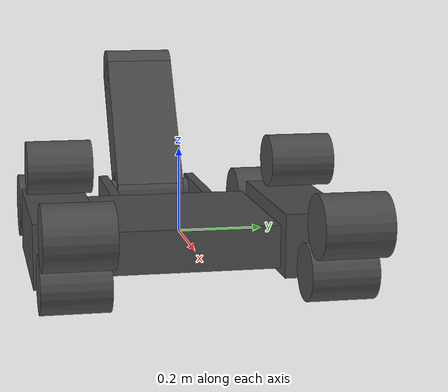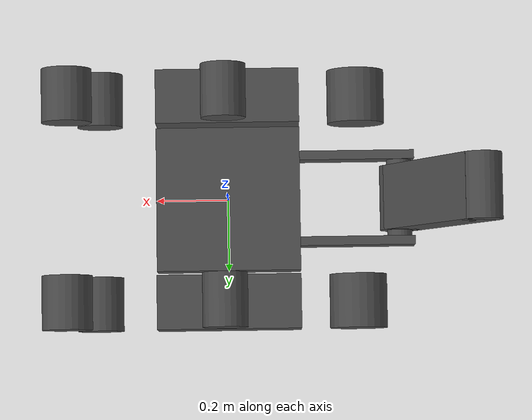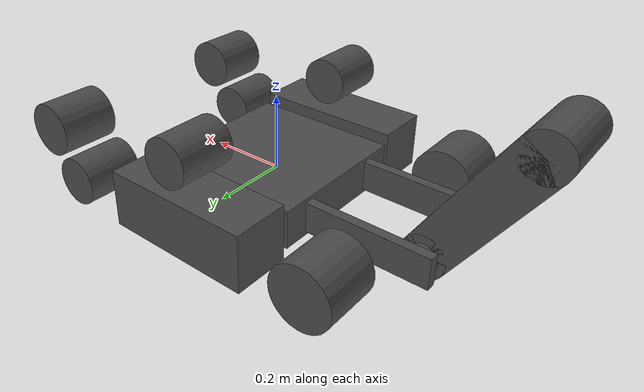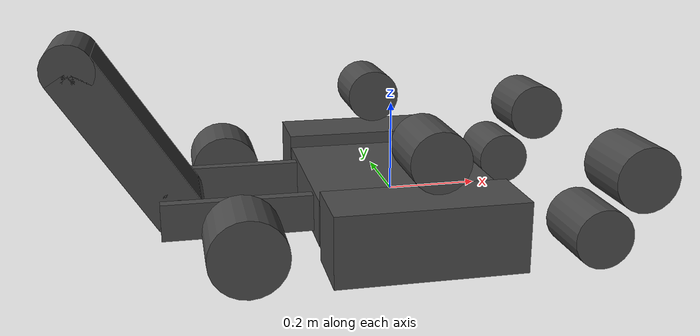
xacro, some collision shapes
<?xml version="1.0" encoding="utf-8"?>
<robot xmlns:xacro="http://ros.org/wiki/xacro"  name="tracked_vehicle">

    <xacro:property name="left_offset_y" value="0.287" />
    <xacro:property name="right_offset_y" value="-0.287" />
    <xacro:property name="swing_offset_x" value="-0.479" />

    <xacro:macro name="make_box_inertia" params="mass size_x size_y size_z">
        <inertial>
            <mass value="${mass}" />
            <inertia ixx="${mass * (size_y * size_y + size_z * size_z) / 12}" ixy="0" ixz="0"
                     iyy="${mass * (size_z * size_z + size_x * size_x) / 12}" iyz="0"
                     izz="${mass * (size_x * size_x + size_y * size_y) / 12}" />
        </inertial>
    </xacro:macro>

    <xacro:include filename="$(find mm_description)/urdf/tracked_base/single_track.urdf.xacro" />
    <xacro:include filename="$(find mm_description)/urdf/tracked_base/swing_arm.urdf.xacro" />

    <xacro:single_track prefix="left" offset_y="${left_offset_y}"/>
    <xacro:single_track prefix="right" offset_y="${right_offset_y}"/>
    <xacro:swing_arm mass="0.3" offset_x="${swing_offset_x}"/>

    <gazebo reference="vehicle_base_link">
        <material>Gazebo/DarkGrey</material>
    </gazebo>
    <gazebo reference="pusher_visual_left">
        <material>Gazebo/DarkGrey</material>
    </gazebo>
    <gazebo reference="pusher_visual_right">
        <material>Gazebo/DarkGrey</material>
    </gazebo>

    <link name="vehicle_base_link">
        <xacro:make_box_inertia mass="50" size_x="0.5" size_y="0.51" size_z="1" />
        <visual>
            <geometry>
                <mesh filename="package://mm_description/meshes/vehicle/base_meter.STL" />
            </geometry>
        </visual>

        <collision>
            <geometry>
                <box size="0.4 0.4 0.1" />
            </geometry>
        </collision>
    </link>

    <joint name="left_track_joint" type="fixed">
        <origin xyz="0 ${left_offset_y} 0" rpy="0 0 0" />
        <parent link="vehicle_base_link" />
        <child link="left_body" />
    </joint>

    <joint name="right_track_joint" type="fixed">
        <origin xyz="0 ${right_offset_y} 0" rpy="0 0 0" />
        <parent link="vehicle_base_link" />
        <child link="right_body" />
    </joint>

    <link name="pusher_visual_left">
        <xacro:make_box_inertia mass="1" size_x="0.5" size_y="0.51" size_z="1" />
        <visual>
            <geometry>
                <box size="0.5 0.025  0.08" />
            </geometry>
        </visual>

        <collision>
            <geometry>
                <box size="0.5 0.025  0.08" />
            </geometry>
        </collision>
    </link>
    <link name="pusher_visual_right">
        <xacro:make_box_inertia mass="1" size_x="0.5" size_y="0.51" size_z="1" />
        <visual>
            <geometry>
                <box size="0.5 0.025  0.08" />
            </geometry>
        </visual>

        <collision>
            <geometry>
                <box size="0.5 0.025 0.08" />
            </geometry>
        </collision>
    </link>

    <joint name="pusher_visual_left_joint" type="fixed">
        <origin xyz="-0.27 0.12 0" rpy="0 0 0" />
        <parent link="vehicle_base_link" />
        <child link="pusher_visual_left" />
    </joint>
    <joint name="pusher_visual_right_joint" type="fixed">
        <origin xyz="-0.27 -0.12 0" rpy="0 0 0" />
        <parent link="vehicle_base_link" />
        <child link="pusher_visual_right" />
    </joint>

    <!-- virtual wheel base -->
    <xacro:include filename="$(find mm_description)/urdf/tracked_base/wheel_and_caster.xacro" />

    <xacro:property name="visual" value="false" />
    <xacro:property name="wheel_base_vertical_offset" value="${wheel_radius-0.08-0.01}" />
    <xacro:property name="dist_caster_front_back" value="0.9" /> <!-- distance between front caster and back caster-->
    <xacro:property name="dist_caster_left_right" value="${left_offset_y*2}" /> <!-- distance between front caster and back caster-->
    <xacro:wheel wheel_prefix="left" parent_link="vehicle_base_link" visual="${visual}">
        <origin xyz="0 ${left_offset_y} ${wheel_base_vertical_offset}" rpy="0 0 0" />
    </xacro:wheel>
    <xacro:wheel wheel_prefix="right" parent_link="vehicle_base_link" visual="${visual}">
        <origin xyz="0 ${right_offset_y} ${wheel_base_vertical_offset}" rpy="0 0 0" />
    </xacro:wheel>
    <xacro:caster caster_prefix="front_left" parent_link="vehicle_base_link" visual="${visual}" >
        <origin xyz="${dist_caster_front_back/2} ${dist_caster_left_right/2} ${wheel_base_vertical_offset - wheel_radius + caster_radius}" rpy="0 0 0" />
    </xacro:caster>
    <xacro:caster caster_prefix="front_right" parent_link="vehicle_base_link" visual="${visual}" >
        <origin xyz="${dist_caster_front_back/2} ${-dist_caster_left_right/2} ${wheel_base_vertical_offset - wheel_radius + caster_radius}" rpy="0 0 0" />
    </xacro:caster>
    <xacro:caster caster_prefix="back_left" parent_link="vehicle_base_link" visual="${visual}">
        <origin xyz="${-dist_caster_front_back/2} ${dist_caster_left_right/2} ${wheel_base_vertical_offset - wheel_radius + caster_radius}" rpy="0 0 0" />
    </xacro:caster>
    <xacro:caster caster_prefix="back_right" parent_link="vehicle_base_link" visual="${visual}">
        <origin xyz="${-dist_caster_front_back/2} ${-dist_caster_left_right/2} ${wheel_base_vertical_offset - wheel_radius + caster_radius}" rpy="0 0 0" />
    </xacro:caster>

    <joint name="push_plate_joint" type="fixed">
        <origin xyz="${swing_offset_x} 0 0" rpy="0 1 0" />
        <parent link="vehicle_base_link" />
        <child link="arm_connector" />
        <axis xyz="0 1 0"/>
    </joint>

    <!-- ros_control for gazebo, should only load once!! -->
</robot>

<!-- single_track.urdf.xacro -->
<robot xmlns:xacro="http://ros.org/wiki/xacro"  name="single_track">

<xacro:macro name="single_track" params="prefix offset_y">
    <link name="${prefix}_body">
        <inertial>
            <mass value="1"/>
            <inertia ixx="0.0250083333333" ixy="0" ixz="0" iyy="0.0241666666667" iyz="0" izz="0.0425083333333"/>
        </inertial>
        <visual>
            <geometry>
                <mesh filename="package://mm_description/meshes/vehicle/track_entity_meter.STL" />
            </geometry>
        </visual>
        <collision>
            <geometry>
                <box size="0.4 0.151 0.15"/>
            </geometry>
        </collision>
    </link>
    <gazebo reference="${prefix}_body">
        <material>Gazebo/DarkGrey</material>
    </gazebo>
    <gazebo reference="${prefix}_body_fixed_idler_link_1">
        <material>Gazebo/DarkGrey</material>
    </gazebo>
    <gazebo reference="${prefix}_body_fixed_idler_link_2">
        <material>Gazebo/DarkGrey</material>
    </gazebo>
    <gazebo reference="${prefix}_body_fixed_idler_link_3">
        <material>Gazebo/DarkGrey</material>
    </gazebo>
    <gazebo reference="${prefix}_sprocket">
        <material>Gazebo/DarkGrey</material>
    </gazebo>

    <!-- body cylinder: back-->
    <link name="${prefix}_body_fixed_idler_link_1">
        <inertial>
            <mass value="0.2"/>
            <inertia ixx="0.004655" ixy="0" ixz="0" iyy="0.00064" iyz="0" izz="0.004655"/>
        </inertial>
        <visual>
            <origin rpy="1.57079632679 0 0" xyz="0 0 0"/>
            <geometry>
                <cylinder length="0.15" radius="0.08"/>
            </geometry>
        </visual>
        <collision>
            <origin rpy="1.57079632679 0 0" xyz="0 0 0"/>
            <geometry>
                <cylinder length="0.15" radius="0.08"/>
            </geometry>
        </collision>
    </link>
    <joint name="${prefix}_body_fixed_idler_joint_1" type="fixed">
        <origin rpy="0 0 0" xyz="-0.36 0 0"/>
        <parent link="${prefix}_body"/>
        <child link="${prefix}_body_fixed_idler_link_1"/>
    </joint>

    <!-- body cylinder: front-->
    <link name="${prefix}_body_fixed_idler_link_2">
        <inertial>
            <mass value="0.2"/>
            <inertia ixx="0.004655" ixy="0" ixz="0" iyy="0.00064" iyz="0" izz="0.004655"/>
        </inertial>
        <visual>
            <origin rpy="1.57079632679 0 0" xyz="0 0 0"/>
            <geometry>
                <cylinder length="0.15" radius="0.07"/>
            </geometry>
        </visual>
        <collision>
            <origin rpy="1.57079632679 0 0" xyz="0 0 0"/>
            <geometry>
                <cylinder length="0.15" radius="0.07"/>
            </geometry>
        </collision>
    </link>
    <joint name="${prefix}_body_fixed_idler_joint_2" type="fixed">
        <origin rpy="0 0 0" xyz="0.445 0 0.102"/>
        <parent link="${prefix}_body"/>
        <child link="${prefix}_body_fixed_idler_link_2"/>
    </joint>

    <!-- body cylinder: top-->
    <link name="${prefix}_body_fixed_idler_link_3">
        <inertial>
            <mass value="0.2"/>
            <inertia ixx="0.004655" ixy="0" ixz="0" iyy="0.00064" iyz="0" izz="0.004655"/>
        </inertial>
        <visual>
            <origin rpy="1.57079632679 0 0" xyz="0 0 0"/>
            <geometry>
                <cylinder length="0.15" radius="0.062"/>
            </geometry>
        </visual>
        <collision>
            <origin rpy="1.57079632679 0 0" xyz="0 0 0"/>
            <geometry>
                <cylinder length="0.15" radius="0.062"/>
            </geometry>
        </collision>
    </link>
    <joint name="${prefix}_body_fixed_idler_joint_3" type="fixed">
        <origin rpy="0 0 0" xyz="0.00953 0 0.16618"/>
        <parent link="${prefix}_body"/>
        <child link="${prefix}_body_fixed_idler_link_3"/>
    </joint>

    <!-- sprocket driving the track : cylinder -->
    <link name="${prefix}_sprocket">
        <inertial>
            <mass value="0.2"/>
            <!-- assuming axis of cylinder is y, not z -->
            <inertia ixx="0.004655" ixy="0" ixz="0" iyy="0.00064" iyz="0" izz="0.004655"/>
        </inertial>
        <visual>
            <origin rpy="1.57079632679 0 0" xyz="0 0 0"/>
            <geometry>
                <cylinder length="0.15" radius="0.064"/>
            </geometry>
        </visual>
        <collision>
            <origin rpy="1.57079632679 0 0" xyz="0 0 0"/>
            <geometry>
                <cylinder length="0.1" radius="0.064"/>
            </geometry>
        </collision>
    </link>
    <joint name="${prefix}_sprocket_axle" type="fixed">
        <origin rpy="0 0 0" xyz="0.36 ${offset_y*0.001} -0.018"/>
        <parent link="${prefix}_body"/>
        <child link="${prefix}_sprocket"/>
        <axis xyz="0 1 0"/>
    </joint>

</xacro:macro>
</robot>

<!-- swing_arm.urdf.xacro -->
<robot xmlns:xacro="http://ros.org/wiki/xacro"  name="swing_arm">
<xacro:macro name="swing_arm" params="mass offset_x">
    <link name="arm_body">
        <inertial>
            <mass value="${mass}"/>
            <inertia ixx="0.0250083333333" ixy="0" ixz="0" iyy="0.0241666666667" iyz="0" izz="0.0425083333333"/>
        </inertial>
        <visual>
            <geometry>
                <box size="0.375 0.18 0.11"/>
            </geometry>
        </visual>
        <collision>
            <geometry>
                <box size="0.375 0.18 0.11"/>
            </geometry>
        </collision>
    </link>

    <link name="arm_connector">
        <inertial>
            <mass value="0.2"/>
            <!-- assuming axis of cylinder is y, not z -->
            <inertia ixx="0.004655" ixy="0" ixz="0" iyy="0.00064" iyz="0" izz="0.004655"/>
        </inertial>
        <visual>
            <origin rpy="1.57079632679 0 0" xyz="0 0 0"/>
            <geometry>
                <cylinder length="0.25" radius="0.035"/>
            </geometry>
        </visual>
        <collision>
            <origin rpy="1.57079632679 0 0" xyz="0 0 0"/>
            <geometry>
                <cylinder length="0.25" radius="0.035"/>
            </geometry>
        </collision>
    </link>
    <joint name="arm_connector_joint" type="fixed">
        <origin rpy="0 0 0" xyz="-0.188 0 0"/>
        <parent link="arm_connector"/>
        <child link="arm_body"/>
        <axis xyz="0 1 0"/>
    </joint>
    <!-- sprocket driving the track : cylinder -->
    <link name="sprocket">
        <inertial>
            <mass value="0.2"/>
            <!-- assuming axis of cylinder is y, not z -->
            <inertia ixx="0.004655" ixy="0" ixz="0" iyy="0.00064" iyz="0" izz="0.004655"/>
        </inertial>
        <visual>
            <origin rpy="1.57079632679 0 0" xyz="0 0 0"/>
            <geometry>
                <cylinder length="0.18" radius="0.055"/>
            </geometry>
        </visual>
        <collision>
            <origin rpy="1.57079632679 0 0" xyz="0 0 0"/>
            <geometry>
                <cylinder length="0.18" radius="0.055"/>
            </geometry>
        </collision>
    </link>
    <joint name="sprocket_axle" type="fixed">
        <origin rpy="0 0 0" xyz="0.188 0 0"/>
        <parent link="arm_body"/>
        <child link="sprocket"/>
        <axis xyz="0 1 0"/>
    </joint>
    <!-- idler on the other side of the sprocket: cylinder -->
    <link name="idler">
        <inertial>
            <mass value="0.2"/>
            <!-- assuming axis of cylinder is y, not z -->
            <inertia ixx="0.004655" ixy="0" ixz="0" iyy="0.00064" iyz="0" izz="0.004655"/>
        </inertial>
        <visual>
            <origin rpy="1.57079632679 0 0" xyz="0 0 0"/>
            <geometry>
                <cylinder length="0.18" radius="0.055"/>
            </geometry>
        </visual>
        <collision>
            <origin rpy="1.57079632679 0 0" xyz="0 0 0"/>
            <geometry>
                <cylinder length="0.18" radius="0.055"/>
            </geometry>
        </collision>
    </link>
    <joint name="idler_axle" type="fixed">
        <origin rpy="0 0 0" xyz="-0.188 0 0"/>
        <parent link="arm_body"/>
        <child link="idler"/>
    </joint>
    <gazebo reference="arm_body">
        <material>Gazebo/DarkGrey</material>
    </gazebo>
    <gazebo reference="arm_connector">
        <material>Gazebo/DarkGrey</material>
    </gazebo>
    <gazebo reference="sprocket">
        <material>Gazebo/DarkGrey</material>
    </gazebo>
    <gazebo reference="idler">
        <material>Gazebo/DarkGrey</material>
    </gazebo>
</xacro:macro>
</robot>

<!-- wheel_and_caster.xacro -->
<robot xmlns:xacro="http://ros.org/wiki/xacro"  name="wheel_and_caster">

    <xacro:macro name="cylinder_inertial_matrix" params="m r h">
        <inertial>
            <mass value="${m}" />
            <inertia ixx="${m*(3*r*r+h*h)/12}" ixy = "0" ixz = "0"
                iyy="${m*(3*r*r+h*h)/12}" iyz = "0"
                izz="${m*r*r/2}" />
        </inertial>
    </xacro:macro>
    <!-- Macro for inertia matrix -->
    <xacro:macro name="sphere_inertial_matrix" params="m r">
        <inertial>
            <mass value="${m}" />
            <inertia ixx="${2*m*r*r/5}" ixy="0" ixz="0"
                iyy="${2*m*r*r/5}" iyz="0"
                izz="${2*m*r*r/5}" />
        </inertial>
    </xacro:macro>

    <xacro:property name="M_PI" value="3.1415926" />
    <!-- Defining the colors used in this robot -->
    <material name="yellow">
        <color rgba="1 0.4 0 1" />
    </material>
    <material name="black">
        <color rgba="0 0 0 0.95" />
    </material>
    <material name="gray">
        <color rgba="0.75 0.75 0.75 1" />
    </material>

    <!-- Wheel Properties -->
    <xacro:property name="wheel_length" value="0.07" />
    <xacro:property name="wheel_radius" value="0.15" />
    <xacro:property name="wheel_mass" value="1" />
    <!-- Macro for robot wheel -->
    <xacro:macro name="wheel" params="wheel_prefix parent_link *joint_pose visual">
        <link name="${wheel_prefix}_wheel_link">
            <xacro:if value="${visual}">
                <visual>
                    <origin xyz="0 0 0" rpy="${M_PI/2} 0 0" />
                    <geometry>
                        <cylinder length="${wheel_length}" radius="${wheel_radius}" />
                    </geometry>
                    <material name="gray" />
                </visual>
            </xacro:if>
            <collision>
                <origin xyz="0 0 0" rpy="${M_PI/2} 0 0" />
                <geometry>
                    <cylinder radius="${wheel_radius}" length="${wheel_length}" />
                </geometry>
            </collision>
            <cylinder_inertial_matrix m="${wheel_mass}" r="${wheel_radius}" h="${wheel_length}" />
        </link>

        <joint name="${wheel_prefix}_wheel_joint" type="continuous">
            <parent link="${parent_link}" />
            <child link="${wheel_prefix}_wheel_link" />
            <xacro:insert_block name="joint_pose" />
            <axis xyz="0 1 0" />
        </joint>

        <gazebo reference="${wheel_prefix}_wheel_link">
            <material>Gazebo/Gray</material>
        </gazebo>

        <gazebo reference="${wheel_prefix}_wheel_link">
            <mu1 value="1000" />
            <mu2 value="1000" />
        </gazebo>
        <!-- Transmission is important to link the joints and the controller -->
        <transmission name="${wheel_prefix}_wheel_joint_trans">
            <type>transmission_interface/SimpleTransmission</type>
            <joint name="${wheel_prefix}_wheel_joint">
                <hardwareInterface>hardware_interface/VelocityJointInterface</hardwareInterface>
            </joint>
            <actuator name="${wheel_prefix}_wheel_motor">
                <hardwareInterface>hardware_interface/VelocityJointInterface</hardwareInterface>
                <mechanicalReduction>1</mechanicalReduction>
            </actuator>
        </transmission>
    </xacro:macro>

    <!-- caster -->
    <xacro:property name="caster_mass" value="0.2" />
    <xacro:property name="caster_radius" value="0.05" />
    <!-- Macro for robot caster -->
    <xacro:macro name="caster" params="caster_prefix *joint_pose parent_link visual:=true">

        <link name="${caster_prefix}_caster_link">
            <xacro:if value="${visual}">
                <visual>
                    <origin xyz="0 0 0" rpy="0 0 0" />
                    <geometry>
                        <sphere radius="${caster_radius}" />
                    </geometry>
                    <material name="black" />
                </visual>
            </xacro:if>

            <collision>
                <origin xyz="0 0 0" rpy="0 0 0" />
                <geometry>
                    <sphere radius="${caster_radius}" />
                </geometry>
            </collision>
            <sphere_inertial_matrix m="${caster_mass}" r="${caster_radius}" />
        </link>

        <gazebo reference="${caster_prefix}_caster_link">
            <material>Gazebo/Black</material>
        </gazebo>

        <gazebo reference="${caster_prefix}_caster_link">
            <mu1 value="0" />
            <mu2 value="0" />
        </gazebo>

        <joint name="${caster_prefix}_caster_joint" type="fixed">
            <xacro:insert_block name="joint_pose" />
            <parent link="${parent_link}" />
            <child link="${caster_prefix}_caster_link" />
        </joint>

    </xacro:macro>

</robot>
